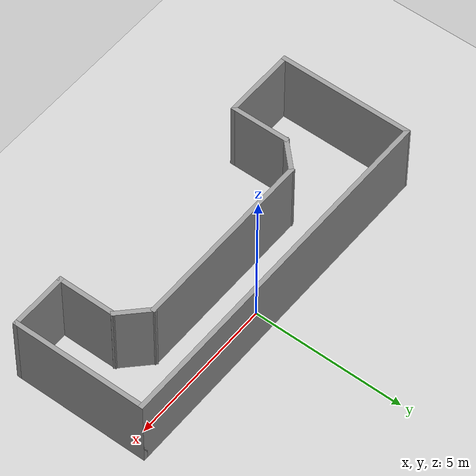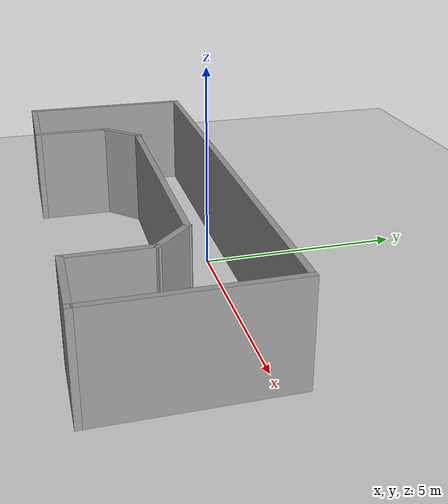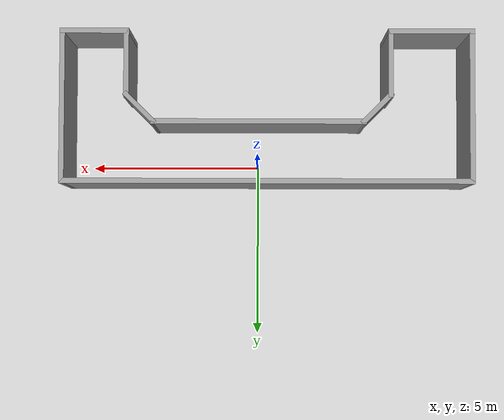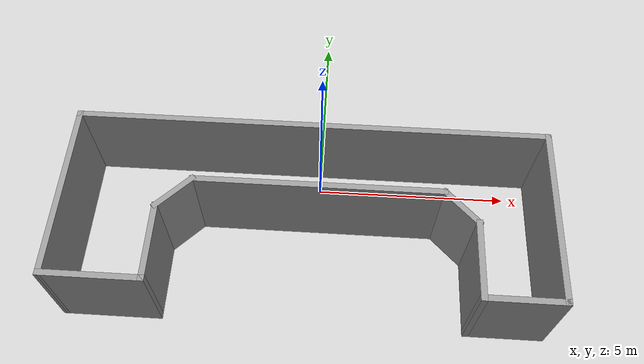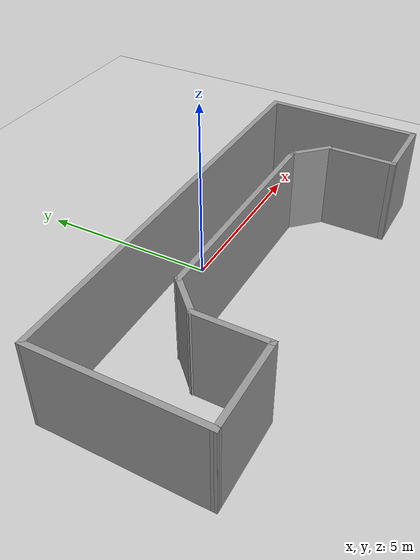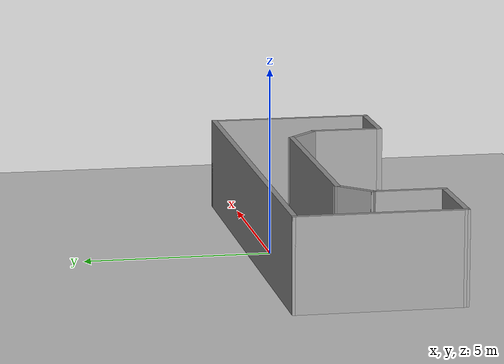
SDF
<sdf version="1.6">
 <world name="default">
  <light name="sun" type="directional">
   <pose>0 0 15 0 -0 0</pose>
   <diffuse>0.8 0.8 0.8 1</diffuse>
   <specular>0.2 0.2 0.2 1</specular>
   <attenuation>
    <range>1000</range>
    <constant>0.9</constant>
    <linear>0.01</linear>
    <quadratic>0.001</quadratic>
   </attenuation>
   <direction>-0.5 0.1 -0.9</direction>
  </light>
  <model name="ground_plane">
   <static>1</static>
   <link name="link">
    <collision name="collision">
     <geometry><plane><normal>0 0 1</normal><size>100 100</size></plane></geometry>
     <surface><friction><ode><mu>100</mu><mu2>50</mu2></ode></friction></surface>
    </collision>
    <visual name="visual">
     <transparency>1</transparency>
     <cast_shadows>0</cast_shadows>
     <geometry><plane><normal>0 0 1</normal><size>100 100</size></plane></geometry>
     <material>
      <script><uri>file://media/materials/scripts/gazebo.material</uri><name>Gazebo/Grey</name></script>
     </material>
    </visual>
   </link>
  </model>
  <gravity>0 0 -9.8</gravity>
  <magnetic_field>6e-06 2.3e-05 -4.2e-05</magnetic_field>
  <atmosphere type="adiabatic"/>
  <physics name="default_physics" default="0" type="ode">
   <max_step_size>0.001</max_step_size>
   <real_time_factor>1</real_time_factor>
   <real_time_update_rate>1000</real_time_update_rate>
  </physics>
  <scene><ambient>0.4 0.4 0.4 1</ambient><background>0.7 0.7 0.7 1</background><shadows>1</shadows></scene>
  <spherical_coordinates>
   <surface_model>EARTH_WGS84</surface_model>
   <latitude_deg>0</latitude_deg>
   <longitude_deg>0</longitude_deg>
   <elevation>0</elevation>
   <heading_deg>0</heading_deg>
  </spherical_coordinates>
  <model name="MyWorld">
   <pose>-0.27131 -1.63878 0 0 -0 0</pose>
   <link name="Wall_1">
    <collision name="Wall_1_Collision">
     <geometry><box><size>12 0.15 2.5</size></box></geometry>
     <pose>0 0 1.25 0 -0 0</pose>
    </collision>
    <visual name="Wall_1_Visual">
     <pose>0 0 1.25 0 -0 0</pose>
     <geometry><box><size>12 0.15 2.5</size></box></geometry>
     <material>
      <script><uri>file://media/materials/scripts/gazebo.material</uri><name>Gazebo/Grey</name></script>
      <ambient>1 1 1 1</ambient>
     </material>
     <meta><layer>0</layer></meta>
    </visual>
    <pose>0.002866 2.175 0 0 -0 0</pose>
   </link>
   <link name="Wall_10">
    <collision name="Wall_10_Collision">
     <geometry><box><size>4.5 0.15 2.5</size></box></geometry>
     <pose>0 0 1.25 0 -0 0</pose>
    </collision>
    <visual name="Wall_10_Visual">
     <pose>0 0 1.25 0 -0 0</pose>
     <geometry><box><size>4.5 0.15 2.5</size></box></geometry>
     <material>
      <script><uri>file://media/materials/scripts/gazebo.material</uri><name>Gazebo/Grey</name></script>
      <ambient>1 1 1 1</ambient>
     </material>
     <meta><layer>0</layer></meta>
    </visual>
    <pose>-5.92495 0 0 0 -0 1.5695</pose>
   </link>
   <link name="Wall_2">
    <collision name="Wall_2_Collision">
     <geometry><box><size>4.5 0.15 2.5</size></box></geometry>
     <pose>0 0 1.25 0 -0 0</pose>
    </collision>
    <visual name="Wall_2_Visual">
     <pose>0 0 1.25 0 -0 0</pose>
     <geometry><box><size>4.5 0.15 2.5</size></box></geometry>
     <material>
      <script><uri>file://media/materials/scripts/gazebo.material</uri><name>Gazebo/Grey</name></script>
      <ambient>1 1 1 1</ambient>
     </material>
     <meta><layer>0</layer></meta>
    </visual>
    <pose>5.92787 0 0 0 0 -1.5708</pose>
   </link>
   <link name="Wall_3">
    <collision name="Wall_3_Collision">
     <geometry><box><size>2 0.15 2.5</size></box></geometry>
     <pose>0 0 1.25 0 -0 0</pose>
    </collision>
    <visual name="Wall_3_Visual">
     <pose>0 0 1.25 0 -0 0</pose>
     <geometry><box><size>2 0.15 2.5</size></box></geometry>
     <material>
      <script><uri>file://media/materials/scripts/gazebo.material</uri><name>Gazebo/Grey</name></script>
      <ambient>1 1 1 1</ambient>
     </material>
     <meta><layer>0</layer></meta>
    </visual>
    <pose>5.00287 -2.175 0 0 -0 3.14159</pose>
   </link>
   <link name="Wall_4">
    <collision name="Wall_4_Collision">
     <geometry><box><size>2 0.15 2.5</size></box></geometry>
     <pose>0 0 1.25 0 -0 0</pose>
    </collision>
    <visual name="Wall_4_Visual">
     <pose>0 0 1.25 0 -0 0</pose>
     <geometry><box><size>2 0.15 2.5</size></box></geometry>
     <material>
      <script><uri>file://media/materials/scripts/gazebo.material</uri><name>Gazebo/Grey</name></script>
      <ambient>1 1 1 1</ambient>
     </material>
     <meta><layer>0</layer></meta>
    </visual>
    <pose>4.07787 -1.25 0 0 -0 1.5708</pose>
   </link>
   <link name="Wall_5">
    <collision name="Wall_5_Collision">
     <geometry><box><size>1.25 0.15 2.5</size></box></geometry>
     <pose>0 0 1.25 0 -0 0</pose>
    </collision>
    <visual name="Wall_5_Visual">
     <pose>0 0 1.25 0 -0 0</pose>
     <geometry><box><size>1.25 0.15 2.5</size></box></geometry>
     <material>
      <script><uri>file://media/materials/scripts/gazebo.material</uri><name>Gazebo/Grey</name></script>
      <ambient>1 1 1 1</ambient>
     </material>
     <meta><layer>0</layer></meta>
    </visual>
    <pose>3.68896 0.063909 0 0 -0 2.35619</pose>
   </link>
   <link name="Wall_6">
    <collision name="Wall_6_Collision">
     <geometry><box><size>6.25 0.15 2.5</size></box></geometry>
     <pose>0 0 1.25 0 -0 0</pose>
    </collision>
    <visual name="Wall_6_Visual">
     <pose>0 0 1.25 0 -0 0</pose>
     <geometry><box><size>6.25 0.15 2.5</size></box></geometry>
     <material>
      <script><uri>file://media/materials/scripts/gazebo.material</uri><name>Gazebo/Grey</name></script>
      <ambient>1 1 1 1</ambient>
     </material>
     <meta><layer>0</layer></meta>
    </visual>
    <pose>0.250048 0.452818 0 0 -0 3.14159</pose>
   </link>
   <link name="Wall_7">
    <collision name="Wall_7_Collision">
     <geometry><box><size>1.25 0.15 2.5</size></box></geometry>
     <pose>0 0 1.25 0 -0 0</pose>
    </collision>
    <visual name="Wall_7_Visual">
     <pose>0 0 1.25 0 -0 0</pose>
     <geometry><box><size>1.25 0.15 2.5</size></box></geometry>
     <material>
      <script><uri>file://media/materials/scripts/gazebo.material</uri><name>Gazebo/Grey</name></script>
      <ambient>1 1 1 1</ambient>
     </material>
     <meta><layer>0</layer></meta>
    </visual>
    <pose>-3.18886 0.063909 0 0 0 -2.35619</pose>
   </link>
   <link name="Wall_8">
    <collision name="Wall_8_Collision">
     <geometry><box><size>2 0.15 2.5</size></box></geometry>
     <pose>0 0 1.25 0 -0 0</pose>
    </collision>
    <visual name="Wall_8_Visual">
     <pose>0 0 1.25 0 -0 0</pose>
     <geometry><box><size>2 0.15 2.5</size></box></geometry>
     <material>
      <script><uri>file://media/materials/scripts/gazebo.material</uri><name>Gazebo/Grey</name></script>
      <ambient>1 1 1 1</ambient>
     </material>
     <meta><layer>0</layer></meta>
    </visual>
    <pose>-3.57777 -1.25 0 0 0 -1.5708</pose>
   </link>
   <link name="Wall_9">
    <collision name="Wall_9_Collision">
     <geometry><box><size>2.5 0.15 2.5</size></box></geometry>
     <pose>0 0 1.25 0 -0 0</pose>
    </collision>
    <visual name="Wall_9_Visual">
     <pose>0 0 1.25 0 -0 0</pose>
     <geometry><box><size>2.5 0.15 2.5</size></box></geometry>
     <material>
      <script><uri>file://media/materials/scripts/gazebo.material</uri><name>Gazebo/Grey</name></script>
      <ambient>1 1 1 1</ambient>
     </material>
     <meta><layer>0</layer></meta>
    </visual>
    <pose>-4.75277 -2.175 0 0 -0 3.14159</pose>
   </link>
   <static>1</static>
  </model>
 </world>
</sdf>
